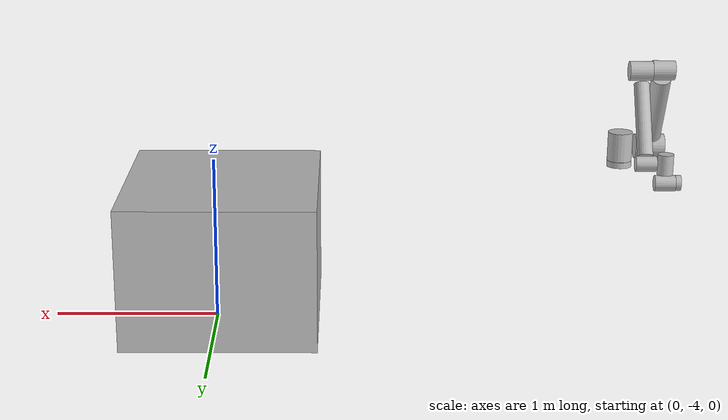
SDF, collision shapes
<sdf version="1.6">
 <model name="erica">
  <model name="cabinet2">
   <link name="link_2">
    <inertial>
     <mass>1</mass>
     <inertia>
      <ixx>0.166667</ixx>
      <ixy>0</ixy>
      <ixz>0</ixz>
      <iyy>0.166667</iyy>
      <iyz>0</iyz>
      <izz>0.166667</izz>
     </inertia>
    </inertial>
    <visual name="visual">
     <geometry>
      <mesh><uri>model://erica/elements/cabinet2/meshes/model.dae</uri><scale>0.15 0.15 0.15</scale></mesh>
     </geometry>
    </visual>
    <collision name="collision_1">
     <pose>0.17 0.03 0.5 0 -0 0</pose>
     <geometry><box><size>1.28 1.15 0.85</size></box></geometry>
     <surface>
      <friction>
       <ode><mu>1</mu><mu2>1</mu2><fdir1>0 0 0</fdir1><slip1>0</slip1><slip2>0</slip2></ode>
       <torsional>
        <coefficient>1</coefficient>
        <patch_radius>0</patch_radius>
        <surface_radius>0</surface_radius>
        <use_patch_radius>1</use_patch_radius>
        <ode><slip>0</slip></ode>
       </torsional>
      </friction>
      <bounce><restitution_coefficient>0</restitution_coefficient><threshold>1e+06</threshold></bounce>
      <contact>
       <collide_without_contact>0</collide_without_contact>
       <collide_without_contact_bitmask>1</collide_without_contact_bitmask>
       <collide_bitmask>1</collide_bitmask>
       <ode>
        <soft_cfm>0</soft_cfm>
        <soft_erp>0.2</soft_erp>
        <kp>1e+13</kp>
        <kd>1</kd>
        <max_vel>0.01</max_vel>
        <min_depth>0</min_depth>
       </ode>
       <bullet>
        <split_impulse>1</split_impulse>
        <split_impulse_penetration_threshold>-0.01</split_impulse_penetration_threshold>
        <soft_cfm>0</soft_cfm>
        <soft_erp>0.2</soft_erp>
        <kp>1e+13</kp>
        <kd>1</kd>
       </bullet>
      </contact>
     </surface>
    </collision>
   </link>
   <static>1</static>
   <pose>-0.031168 -4.01236 0 0 -0 1.56723</pose>
  </model>
  <model name="ur10_clone">
   <link name="base">
    <inertial>
     <mass>4</mass>
     <inertia>
      <ixx>0.00610633</ixx>
      <ixy>0</ixy>
      <ixz>0</ixz>
      <iyy>0.00610633</iyy>
      <iyz>0</iyz>
      <izz>0.01125</izz>
     </inertia>
    </inertial>
    <collision name="collision">
     <pose>0 0 0.019 0 -0 0</pose>
     <geometry><cylinder><radius>0.075</radius><length>0.038</length></cylinder></geometry>
    </collision>
    <visual name="visual"><geometry><mesh><uri>model://ur10/meshes/base.dae</uri></mesh></geometry></visual>
   </link>
   <link name="shoulder">
    <pose>0 0 0.1273 0 -0 0</pose>
    <inertial>
     <mass>7.778</mass>
     <inertia>
      <ixx>0.0314743</ixx>
      <ixy>0</ixy>
      <ixz>0</ixz>
      <iyy>0.0314743</iyy>
      <iyz>0</iyz>
      <izz>0.0218756</izz>
     </inertia>
    </inertial>
    <collision name="collision">
     <geometry><cylinder><radius>0.075</radius><length>0.177</length></cylinder></geometry>
    </collision>
    <visual name="visual"><geometry><mesh><uri>model://ur10/meshes/shoulder.dae</uri></mesh></geometry></visual>
   </link>
   <link name="upper_arm">
    <pose>0 0.220941 0.1273 0 0.495268 0</pose>
    <inertial>
     <pose>0 0 0.306 0 -0 0</pose>
     <mass>12.93</mass>
     <inertia>
      <ixx>0.421754</ixx>
      <ixy>0</ixy>
      <ixz>0</ixz>
      <iyy>0.421754</iyy>
      <iyz>0</iyz>
      <izz>0.0363656</izz>
     </inertia>
    </inertial>
    <collision name="collision1">
     <pose>0 -0.045 0 1.5707 -0 0</pose>
     <geometry><cylinder><radius>0.075</radius><length>0.177</length></cylinder></geometry>
    </collision>
    <collision name="collision2">
     <pose>0 -0.0436 0.32 0 -0 1.5707</pose>
     <geometry><cylinder><radius>0.058</radius><length>0.461</length></cylinder></geometry>
    </collision>
    <collision name="collision3">
     <pose>0 -0.04 0.613 1.5707 -0 0</pose>
     <geometry><cylinder><radius>0.058</radius><length>0.129</length></cylinder></geometry>
    </collision>
    <visual name="visual"><geometry><mesh><uri>model://ur10/meshes/upperarm.dae</uri></mesh></geometry></visual>
   </link>
   <link name="forearm">
    <pose>0.290881 0.049041 0.663009 -3.14159 0.593801 -3.14159</pose>
    <inertial>
     <pose>0 0 0.28615 0 -0 0</pose>
     <mass>3.87</mass>
     <inertia>
      <ixx>0.11107</ixx>
      <ixy>0</ixy>
      <ixz>0</ixz>
      <iyy>0.11107</iyy>
      <iyz>0</iyz>
      <izz>0.0108844</izz>
     </inertia>
    </inertial>
    <collision name="collision1">
     <pose>0 0 0.001 1.5707 -0 0</pose>
     <geometry><cylinder><radius>0.058</radius><length>0.136</length></cylinder></geometry>
    </collision>
    <collision name="collision2">
     <pose>0 0 0.305 0 -0 1.5707</pose>
     <geometry><cylinder><radius>0.045</radius><length>0.447</length></cylinder></geometry>
    </collision>
    <collision name="collision3">
     <pose>0 0.001 0.5735 1.5707 -0 0</pose>
     <geometry><cylinder><radius>0.045</radius><length>0.119</length></cylinder></geometry>
    </collision>
    <visual name="visua"><geometry><mesh><uri>model://ur10/meshes/forearm.dae</uri></mesh></geometry></visual>
   </link>
   <link name="wrist_1">
    <pose>0.612763 0.048289 0.188032 3.14159 -0 3.14159</pose>
    <inertial>
     <mass>1.96</mass>
     <inertia>
      <ixx>0.00510825</ixx>
      <ixy>0</ixy>
      <ixz>0</ixz>
      <iyy>0.00510825</iyy>
      <iyz>0</iyz>
      <izz>0.0055125</izz>
     </inertia>
    </inertial>
    <collision name="collision">
     <pose>0 0.115 0.0025 0 -0 0</pose>
     <geometry><cylinder><radius>0.0455</radius><length>0.119</length></cylinder></geometry>
    </collision>
    <visual name="visual"><geometry><mesh><uri>model://ur10/meshes/wrist1.dae</uri></mesh></geometry></visual>
   </link>
   <link name="wrist_2">
    <pose>0.612784 0.163041 0.188126 3.14159 -0 3.14159</pose>
    <inertial>
     <mass>1.96</mass>
     <inertia>
      <ixx>0.00510825</ixx>
      <ixy>0</ixy>
      <ixz>0</ixz>
      <iyy>0.00510825</iyy>
      <iyz>0</iyz>
      <izz>0.0055125</izz>
     </inertia>
    </inertial>
    <collision name="collision">
     <pose>0 0.002 0.11659 1.5707 -0 0</pose>
     <geometry><cylinder><radius>0.0455</radius><length>0.119</length></cylinder></geometry>
    </collision>
    <visual name="visual"><geometry><mesh><uri>model://ur10/meshes/wrist2.dae</uri></mesh></geometry></visual>
   </link>
   <link name="wrist_3">
    <pose>0.612058 0.163655 0.072656 3.14159 -0 3.14159</pose>
    <inertial>
     <mass>0.202</mass>
     <inertia>
      <ixx>0.000526462</ixx>
      <ixy>0</ixy>
      <ixz>0</ixz>
      <iyy>0.000526462</iyy>
      <iyz>0</iyz>
      <izz>0.000568125</izz>
     </inertia>
    </inertial>
    <collision name="collision">
     <pose>0 0.0765 0 1.5707 -0 0</pose>
     <geometry><cylinder><radius>0.045</radius><length>0.031</length></cylinder></geometry>
    </collision>
    <visual name="visual"><geometry><mesh><uri>model://ur10/meshes/wrist3.dae</uri></mesh></geometry></visual>
   </link>
   <static>1</static>
   <pose>-2.48482 -4.19229 0.907896 0 -0 1.56</pose>
  </model>
  <static>1</static>
 </model>
</sdf>
